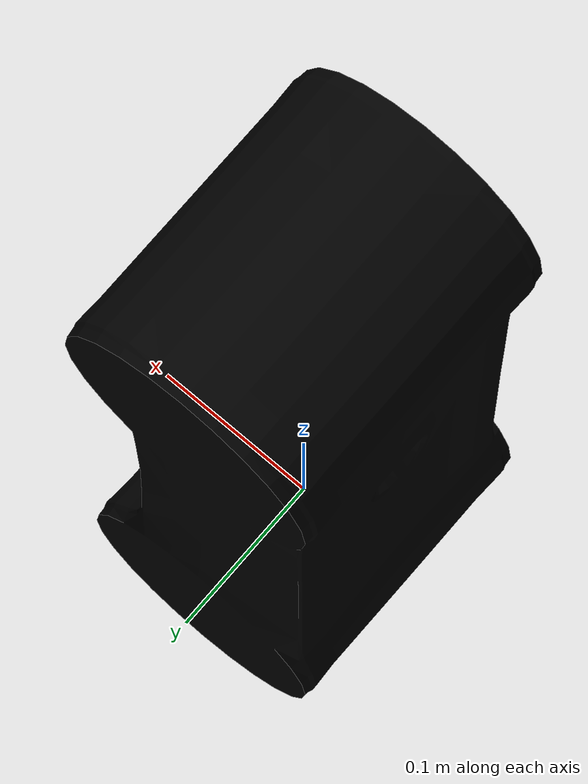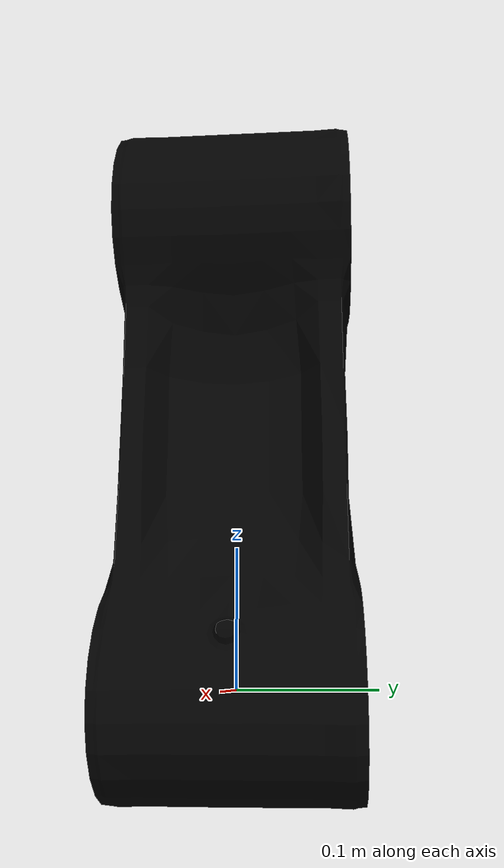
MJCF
<mujoco model="body_link1">
  <default>
    <default class="visual">
      <geom group="2" type="mesh" contype="0" conaffinity="0"/>
    </default>
    <default class="collision">
      <geom group="3" type="mesh"/>
    </default>
  </default>
  <asset>
    <material name="material_body_link1_0" specular="0.20000000000000004" shininess="1.0" rgba="0.00000000 0.00000000 0.00000000 1.0"/>
    <mesh file="body_link1.obj"/>
  </asset>
  <worldbody>
    <body name="body_link1">
      <geom material="material_body_link1_0" mesh="body_link1" class="visual"/>
      <geom mesh="body_link1" class="collision"/>
    </body>
  </worldbody>
</mujoco>
